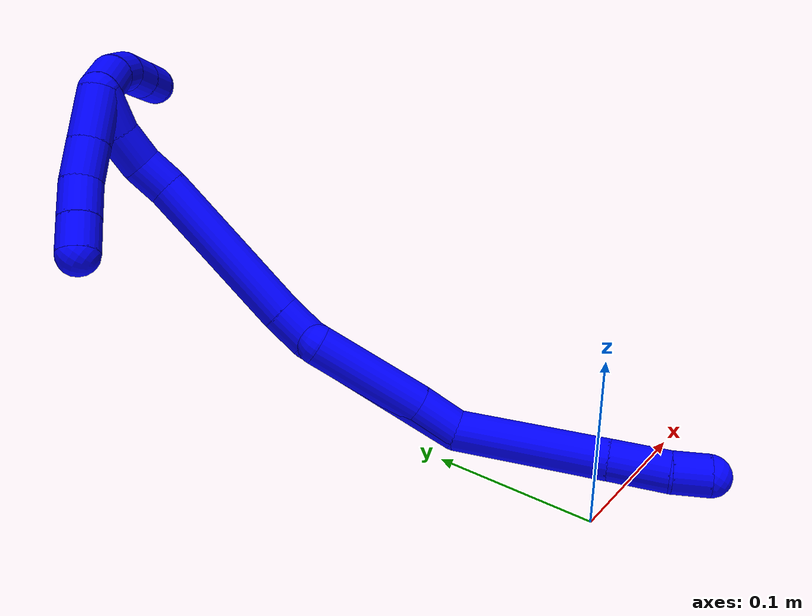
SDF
<sdf version="1.7">
 <world name="default">
  <model name="1">
   <static>0</static>
   <link name="1">
    <collision name="collision-cylinder-e_1_2_8">
     <pose>0.004625 -0.022606 -0.040108 2.62836 0.100126 0.377348</pose>
     <geometry><cylinder><radius>0.0125</radius><length>0.092543</length></cylinder></geometry>
     <surface>
      <friction><ode><mu>1.16</mu><mu2>1.16</mu2><slip1>0</slip1><slip2>0</slip2></ode></friction>
      <contact><ode><kp>1e+06</kp><kd>1</kd><max_vel>0</max_vel><min_depth>0.001</min_depth></ode></contact>
     </surface>
    </collision>
    <visual name="visual-cylinder-e_1_2_8">
     <pose>0.004625 -0.022606 -0.040108 2.62836 0.100126 0.377348</pose>
     <geometry><cylinder><radius>0.0125</radius><length>0.092543</length></cylinder></geometry>
     <material><ambient>0 0 1 1</ambient></material>
    </visual>
    <collision name="collision-cylinder-e_2_8_9">
     <pose>0.010567 -0.054177 -0.095316 2.60575 0.074831 0.271044</pose>
     <geometry><cylinder><radius>0.0125</radius><length>0.03522</length></cylinder></geometry>
     <surface>
      <friction><ode><mu>1.16</mu><mu2>1.16</mu2><slip1>0</slip1><slip2>0</slip2></ode></friction>
      <contact><ode><kp>1e+06</kp><kd>1</kd><max_vel>0</max_vel><min_depth>0.001</min_depth></ode></contact>
     </surface>
    </collision>
    <visual name="visual-cylinder-e_2_8_9">
     <pose>0.010567 -0.054177 -0.095316 2.60575 0.074831 0.271044</pose>
     <geometry><cylinder><radius>0.0125</radius><length>0.03522</length></cylinder></geometry>
     <material><ambient>0 0 1 1</ambient></material>
    </visual>
    <collision name="collision-cylinder-e_3_9_6">
     <pose>0.014564 -0.068342 -0.119871 2.63886 0.243463 0.889172</pose>
     <geometry><cylinder><radius>0.0125</radius><length>0.022236</length></cylinder></geometry>
     <surface>
      <friction><ode><mu>1.16</mu><mu2>1.16</mu2><slip1>0</slip1><slip2>0</slip2></ode></friction>
      <contact><ode><kp>1e+06</kp><kd>1</kd><max_vel>0</max_vel><min_depth>0.001</min_depth></ode></contact>
     </surface>
    </collision>
    <visual name="visual-cylinder-e_3_9_6">
     <pose>0.014564 -0.068342 -0.119871 2.63886 0.243463 0.889172</pose>
     <geometry><cylinder><radius>0.0125</radius><length>0.022236</length></cylinder></geometry>
     <material><ambient>0 0 1 1</ambient></material>
    </visual>
    <collision name="collision-cylinder-e_1_2_10">
     <pose>-0.000681 -0.000761 0.014425 0.052741 -0.047136 -0.001244</pose>
     <geometry><cylinder><radius>0.0125</radius><length>0.028921</length></cylinder></geometry>
     <surface>
      <friction><ode><mu>1.16</mu><mu2>1.16</mu2><slip1>0</slip1><slip2>0</slip2></ode></friction>
      <contact><ode><kp>1e+06</kp><kd>1</kd><max_vel>0</max_vel><min_depth>0.001</min_depth></ode></contact>
     </surface>
    </collision>
    <visual name="visual-cylinder-e_1_2_10">
     <pose>-0.000681 -0.000761 0.014425 0.052741 -0.047136 -0.001244</pose>
     <geometry><cylinder><radius>0.0125</radius><length>0.028921</length></cylinder></geometry>
     <material><ambient>0 0 1 1</ambient></material>
    </visual>
    <collision name="collision-cylinder-e_2_10_5">
     <pose>-0.0057 -0.00378 0.064051 0.064035 -0.122346 -0.003923</pose>
     <geometry><cylinder><radius>0.0125</radius><length>0.071079</length></cylinder></geometry>
     <surface>
      <friction><ode><mu>1.16</mu><mu2>1.16</mu2><slip1>0</slip1><slip2>0</slip2></ode></friction>
      <contact><ode><kp>1e+06</kp><kd>1</kd><max_vel>0</max_vel><min_depth>0.001</min_depth></ode></contact>
     </surface>
    </collision>
    <visual name="visual-cylinder-e_2_10_5">
     <pose>-0.0057 -0.00378 0.064051 0.064035 -0.122346 -0.003923</pose>
     <geometry><cylinder><radius>0.0125</radius><length>0.071079</length></cylinder></geometry>
     <material><ambient>0 0 1 1</ambient></material>
    </visual>
    <collision name="collision-cylinder-e_1_2_11">
     <pose>-0.002799 -0.000149 0.053019 0.002817 -0.052749 -7.4e-05</pose>
     <geometry><cylinder><radius>0.0125</radius><length>0.106186</length></cylinder></geometry>
     <surface>
      <friction><ode><mu>1.16</mu><mu2>1.16</mu2><slip1>0</slip1><slip2>0</slip2></ode></friction>
      <contact><ode><kp>1e+06</kp><kd>1</kd><max_vel>0</max_vel><min_depth>0.001</min_depth></ode></contact>
     </surface>
    </collision>
    <visual name="visual-cylinder-e_1_2_11">
     <pose>-0.002799 -0.000149 0.053019 0.002817 -0.052749 -7.4e-05</pose>
     <geometry><cylinder><radius>0.0125</radius><length>0.106186</length></cylinder></geometry>
     <material><ambient>0 0 1 1</ambient></material>
    </visual>
    <collision name="collision-cylinder-e_2_11_12">
     <pose>-0.004256 -0.001851 0.117496 0.134676 0.115601 0.007805</pose>
     <geometry><cylinder><radius>0.0125</radius><length>0.02328</length></cylinder></geometry>
     <surface>
      <friction><ode><mu>1.16</mu><mu2>1.16</mu2><slip1>0</slip1><slip2>0</slip2></ode></friction>
      <contact><ode><kp>1e+06</kp><kd>1</kd><max_vel>0</max_vel><min_depth>0.001</min_depth></ode></contact>
     </surface>
    </collision>
    <visual name="visual-cylinder-e_2_11_12">
     <pose>-0.004256 -0.001851 0.117496 0.134676 0.115601 0.007805</pose>
     <geometry><cylinder><radius>0.0125</radius><length>0.02328</length></cylinder></geometry>
     <material><ambient>0 0 1 1</ambient></material>
    </visual>
    <collision name="collision-cylinder-e_3_12_13">
     <pose>0.00464 -0.013002 0.177922 0.193551 0.150223 0.014611</pose>
     <geometry><cylinder><radius>0.0125</radius><length>0.100939</length></cylinder></geometry>
     <surface>
      <friction><ode><mu>1.16</mu><mu2>1.16</mu2><slip1>0</slip1><slip2>0</slip2></ode></friction>
      <contact><ode><kp>1e+06</kp><kd>1</kd><max_vel>0</max_vel><min_depth>0.001</min_depth></ode></contact>
     </surface>
    </collision>
    <visual name="visual-cylinder-e_3_12_13">
     <pose>0.00464 -0.013002 0.177922 0.193551 0.150223 0.014611</pose>
     <geometry><cylinder><radius>0.0125</radius><length>0.100939</length></cylinder></geometry>
     <material><ambient>0 0 1 1</ambient></material>
    </visual>
    <collision name="collision-cylinder-e_4_13_14">
     <pose>0.011891 -0.025098 0.237001 0.242231 -0.028981 -0.003528</pose>
     <geometry><cylinder><radius>0.0125</radius><length>0.020835</length></cylinder></geometry>
     <surface>
      <friction><ode><mu>1.16</mu><mu2>1.16</mu2><slip1>0</slip1><slip2>0</slip2></ode></friction>
      <contact><ode><kp>1e+06</kp><kd>1</kd><max_vel>0</max_vel><min_depth>0.001</min_depth></ode></contact>
     </surface>
    </collision>
    <visual name="visual-cylinder-e_4_13_14">
     <pose>0.011891 -0.025098 0.237001 0.242231 -0.028981 -0.003528</pose>
     <geometry><cylinder><radius>0.0125</radius><length>0.020835</length></cylinder></geometry>
     <material><ambient>0 0 1 1</ambient></material>
    </visual>
    <collision name="collision-cylinder-e_5_14_15">
     <pose>0.010929 -0.03372 0.256747 0.56617 -0.057754 -0.016805</pose>
     <geometry><cylinder><radius>0.0125</radius><length>0.022875</length></cylinder></geometry>
     <surface>
      <friction><ode><mu>1.16</mu><mu2>1.16</mu2><slip1>0</slip1><slip2>0</slip2></ode></friction>
      <contact><ode><kp>1e+06</kp><kd>1</kd><max_vel>0</max_vel><min_depth>0.001</min_depth></ode></contact>
     </surface>
    </collision>
    <visual name="visual-cylinder-e_5_14_15">
     <pose>0.010929 -0.03372 0.256747 0.56617 -0.057754 -0.016805</pose>
     <geometry><cylinder><radius>0.0125</radius><length>0.022875</length></cylinder></geometry>
     <material><ambient>0 0 1 1</ambient></material>
    </visual>
    <collision name="collision-cylinder-e_6_15_1">
     <pose>0.011356 -0.048717 0.275744 0.758635 0.08408 0.033533</pose>
     <geometry><cylinder><radius>0.0125</radius><length>0.025885</length></cylinder></geometry>
     <surface>
      <friction><ode><mu>1.16</mu><mu2>1.16</mu2><slip1>0</slip1><slip2>0</slip2></ode></friction>
      <contact><ode><kp>1e+06</kp><kd>1</kd><max_vel>0</max_vel><min_depth>0.001</min_depth></ode></contact>
     </surface>
    </collision>
    <visual name="visual-cylinder-e_6_15_1">
     <pose>0.011356 -0.048717 0.275744 0.758635 0.08408 0.033533</pose>
     <geometry><cylinder><radius>0.0125</radius><length>0.025885</length></cylinder></geometry>
     <material><ambient>0 0 1 1</ambient></material>
    </visual>
    <collision name="collision-cylinder-e_1_1_16">
     <pose>-0.000665 -0.051368 0.277703 -2.44259 -0.93529 1.89131</pose>
     <geometry><cylinder><radius>0.0125</radius><length>0.032576</length></cylinder></geometry>
     <surface>
      <friction><ode><mu>1.16</mu><mu2>1.16</mu2><slip1>0</slip1><slip2>0</slip2></ode></friction>
      <contact><ode><kp>1e+06</kp><kd>1</kd><max_vel>0</max_vel><min_depth>0.001</min_depth></ode></contact>
     </surface>
    </collision>
    <visual name="visual-cylinder-e_1_1_16">
     <pose>-0.000665 -0.051368 0.277703 -2.44259 -0.93529 1.89131</pose>
     <geometry><cylinder><radius>0.0125</radius><length>0.032576</length></cylinder></geometry>
     <material><ambient>0 0 1 1</ambient></material>
    </visual>
    <collision name="collision-cylinder-e_2_16_17">
     <pose>-0.023533 -0.040839 0.264746 -2.482 -0.946485 1.96307</pose>
     <geometry><cylinder><radius>0.0125</radius><length>0.024056</length></cylinder></geometry>
     <surface>
      <friction><ode><mu>1.16</mu><mu2>1.16</mu2><slip1>0</slip1><slip2>0</slip2></ode></friction>
      <contact><ode><kp>1e+06</kp><kd>1</kd><max_vel>0</max_vel><min_depth>0.001</min_depth></ode></contact>
     </surface>
    </collision>
    <visual name="visual-cylinder-e_2_16_17">
     <pose>-0.023533 -0.040839 0.264746 -2.482 -0.946485 1.96307</pose>
     <geometry><cylinder><radius>0.0125</radius><length>0.024056</length></cylinder></geometry>
     <material><ambient>0 0 1 1</ambient></material>
    </visual>
    <collision name="collision-cylinder-e_3_17_18">
     <pose>-0.042249 -0.034114 0.252677 -2.78633 -0.911145 2.43914</pose>
     <geometry><cylinder><radius>0.0125</radius><length>0.02267</length></cylinder></geometry>
     <surface>
      <friction><ode><mu>1.16</mu><mu2>1.16</mu2><slip1>0</slip1><slip2>0</slip2></ode></friction>
      <contact><ode><kp>1e+06</kp><kd>1</kd><max_vel>0</max_vel><min_depth>0.001</min_depth></ode></contact>
     </surface>
    </collision>
    <visual name="visual-cylinder-e_3_17_18">
     <pose>-0.042249 -0.034114 0.252677 -2.78633 -0.911145 2.43914</pose>
     <geometry><cylinder><radius>0.0125</radius><length>0.02267</length></cylinder></geometry>
     <material><ambient>0 0 1 1</ambient></material>
    </visual>
    <collision name="collision-cylinder-e_4_18_4">
     <pose>-0.059274 -0.029273 0.240153 -2.75813 -0.894012 2.37207</pose>
     <geometry><cylinder><radius>0.0125</radius><length>0.020698</length></cylinder></geometry>
     <surface>
      <friction><ode><mu>1.16</mu><mu2>1.16</mu2><slip1>0</slip1><slip2>0</slip2></ode></friction>
      <contact><ode><kp>1e+06</kp><kd>1</kd><max_vel>0</max_vel><min_depth>0.001</min_depth></ode></contact>
     </surface>
    </collision>
    <visual name="visual-cylinder-e_4_18_4">
     <pose>-0.059274 -0.029273 0.240153 -2.75813 -0.894012 2.37207</pose>
     <geometry><cylinder><radius>0.0125</radius><length>0.020698</length></cylinder></geometry>
     <material><ambient>0 0 1 1</ambient></material>
    </visual>
    <collision name="collision-cylinder-e_1_1_19">
     <pose>0.027537 -0.051234 0.289935 -0.920809 1.08428 -0.580586</pose>
     <geometry><cylinder><radius>0.0125</radius><length>0.034152</length></cylinder></geometry>
     <surface>
      <friction><ode><mu>1.16</mu><mu2>1.16</mu2><slip1>0</slip1><slip2>0</slip2></ode></friction>
      <contact><ode><kp>1e+06</kp><kd>1</kd><max_vel>0</max_vel><min_depth>0.001</min_depth></ode></contact>
     </surface>
    </collision>
    <visual name="visual-cylinder-e_1_1_19">
     <pose>0.027537 -0.051234 0.289935 -0.920809 1.08428 -0.580586</pose>
     <geometry><cylinder><radius>0.0125</radius><length>0.034152</length></cylinder></geometry>
     <material><ambient>0 0 1 1</ambient></material>
    </visual>
    <collision name="collision-cylinder-e_2_19_20">
     <pose>0.052166 -0.039588 0.295554 -1.42312 1.05963 -0.935265</pose>
     <geometry><cylinder><radius>0.0125</radius><length>0.021863</length></cylinder></geometry>
     <surface>
      <friction><ode><mu>1.16</mu><mu2>1.16</mu2><slip1>0</slip1><slip2>0</slip2></ode></friction>
      <contact><ode><kp>1e+06</kp><kd>1</kd><max_vel>0</max_vel><min_depth>0.001</min_depth></ode></contact>
     </surface>
    </collision>
    <visual name="visual-cylinder-e_2_19_20">
     <pose>0.052166 -0.039588 0.295554 -1.42312 1.05963 -0.935265</pose>
     <geometry><cylinder><radius>0.0125</radius><length>0.021863</length></cylinder></geometry>
     <material><ambient>0 0 1 1</ambient></material>
    </visual>
    <collision name="collision-cylinder-e_3_20_21">
     <pose>0.070327 -0.027195 0.294249 -1.85717 0.861429 -1.10173</pose>
     <geometry><cylinder><radius>0.0125</radius><length>0.02274</length></cylinder></geometry>
     <surface>
      <friction><ode><mu>1.16</mu><mu2>1.16</mu2><slip1>0</slip1><slip2>0</slip2></ode></friction>
      <contact><ode><kp>1e+06</kp><kd>1</kd><max_vel>0</max_vel><min_depth>0.001</min_depth></ode></contact>
     </surface>
    </collision>
    <visual name="visual-cylinder-e_3_20_21">
     <pose>0.070327 -0.027195 0.294249 -1.85717 0.861429 -1.10173</pose>
     <geometry><cylinder><radius>0.0125</radius><length>0.02274</length></cylinder></geometry>
     <material><ambient>0 0 1 1</ambient></material>
    </visual>
    <collision name="collision-cylinder-e_4_21_3">
     <pose>0.08706 -0.013515 0.290183 -1.86235 0.86808 -1.11439</pose>
     <geometry><cylinder><radius>0.0125</radius><length>0.021245</length></cylinder></geometry>
     <surface>
      <friction><ode><mu>1.16</mu><mu2>1.16</mu2><slip1>0</slip1><slip2>0</slip2></ode></friction>
      <contact><ode><kp>1e+06</kp><kd>1</kd><max_vel>0</max_vel><min_depth>0.001</min_depth></ode></contact>
     </surface>
    </collision>
    <visual name="visual-cylinder-e_4_21_3">
     <pose>0.08706 -0.013515 0.290183 -1.86235 0.86808 -1.11439</pose>
     <geometry><cylinder><radius>0.0125</radius><length>0.021245</length></cylinder></geometry>
     <material><ambient>0 0 1 1</ambient></material>
    </visual>
    <collision name="collision-sphere-3">
     <pose>0.095166 -0.006939 0.28821 0 -0 0</pose>
     <geometry><sphere><radius>0.0125</radius></sphere></geometry>
     <surface>
      <friction><ode><mu>1.16</mu><mu2>1.16</mu2><slip1>0</slip1><slip2>0</slip2></ode></friction>
      <contact><ode><kp>1e+06</kp><kd>1</kd><max_vel>0</max_vel><min_depth>0.001</min_depth></ode></contact>
     </surface>
    </collision>
    <visual name="visual-sphere-3">
     <pose>0.095166 -0.006939 0.28821 0 -0 0</pose>
     <geometry><sphere><radius>0.0125</radius></sphere></geometry>
     <material><ambient>0 0 1 1</ambient></material>
    </visual>
    <collision name="collision-sphere-21">
     <pose>0.078954 -0.02009 0.292157 0 -0 0</pose>
     <geometry><sphere><radius>0.0125</radius></sphere></geometry>
     <surface>
      <friction><ode><mu>1.16</mu><mu2>1.16</mu2><slip1>0</slip1><slip2>0</slip2></ode></friction>
      <contact><ode><kp>1e+06</kp><kd>1</kd><max_vel>0</max_vel><min_depth>0.001</min_depth></ode></contact>
     </surface>
    </collision>
    <visual name="visual-sphere-21">
     <pose>0.078954 -0.02009 0.292157 0 -0 0</pose>
     <geometry><sphere><radius>0.0125</radius></sphere></geometry>
     <material><ambient>0 0 1 1</ambient></material>
    </visual>
    <collision name="collision-sphere-20">
     <pose>0.0617 -0.034299 0.296341 0 -0 0</pose>
     <geometry><sphere><radius>0.0125</radius></sphere></geometry>
     <surface>
      <friction><ode><mu>1.16</mu><mu2>1.16</mu2><slip1>0</slip1><slip2>0</slip2></ode></friction>
      <contact><ode><kp>1e+06</kp><kd>1</kd><max_vel>0</max_vel><min_depth>0.001</min_depth></ode></contact>
     </surface>
    </collision>
    <visual name="visual-sphere-20">
     <pose>0.0617 -0.034299 0.296341 0 -0 0</pose>
     <geometry><sphere><radius>0.0125</radius></sphere></geometry>
     <material><ambient>0 0 1 1</ambient></material>
    </visual>
    <collision name="collision-sphere-19">
     <pose>0.042632 -0.044878 0.294767 0 -0 0</pose>
     <geometry><sphere><radius>0.0125</radius></sphere></geometry>
     <surface>
      <friction><ode><mu>1.16</mu><mu2>1.16</mu2><slip1>0</slip1><slip2>0</slip2></ode></friction>
      <contact><ode><kp>1e+06</kp><kd>1</kd><max_vel>0</max_vel><min_depth>0.001</min_depth></ode></contact>
     </surface>
    </collision>
    <visual name="visual-sphere-19">
     <pose>0.042632 -0.044878 0.294767 0 -0 0</pose>
     <geometry><sphere><radius>0.0125</radius></sphere></geometry>
     <material><ambient>0 0 1 1</ambient></material>
    </visual>
    <collision name="collision-sphere-5">
     <pose>-0.010037 -0.006037 0.099252 0 -0 0</pose>
     <geometry><sphere><radius>0.0125</radius></sphere></geometry>
     <surface>
      <friction><ode><mu>1.16</mu><mu2>1.16</mu2><slip1>0</slip1><slip2>0</slip2></ode></friction>
      <contact><ode><kp>1e+06</kp><kd>1</kd><max_vel>0</max_vel><min_depth>0.001</min_depth></ode></contact>
     </surface>
    </collision>
    <visual name="visual-sphere-5">
     <pose>-0.010037 -0.006037 0.099252 0 -0 0</pose>
     <geometry><sphere><radius>0.0125</radius></sphere></geometry>
     <material><ambient>0 0 1 1</ambient></material>
    </visual>
    <collision name="collision-sphere-10">
     <pose>-0.001363 -0.001523 0.028849 0 -0 0</pose>
     <geometry><sphere><radius>0.0125</radius></sphere></geometry>
     <surface>
      <friction><ode><mu>1.16</mu><mu2>1.16</mu2><slip1>0</slip1><slip2>0</slip2></ode></friction>
      <contact><ode><kp>1e+06</kp><kd>1</kd><max_vel>0</max_vel><min_depth>0.001</min_depth></ode></contact>
     </surface>
    </collision>
    <visual name="visual-sphere-10">
     <pose>-0.001363 -0.001523 0.028849 0 -0 0</pose>
     <geometry><sphere><radius>0.0125</radius></sphere></geometry>
     <material><ambient>0 0 1 1</ambient></material>
    </visual>
    <collision name="collision-sphere-6">
     <pose>0.017244 -0.073541 -0.129326 0 -0 0</pose>
     <geometry><sphere><radius>0.0125</radius></sphere></geometry>
     <surface>
      <friction><ode><mu>1.16</mu><mu2>1.16</mu2><slip1>0</slip1><slip2>0</slip2></ode></friction>
      <contact><ode><kp>1e+06</kp><kd>1</kd><max_vel>0</max_vel><min_depth>0.001</min_depth></ode></contact>
     </surface>
    </collision>
    <visual name="visual-sphere-6">
     <pose>0.017244 -0.073541 -0.129326 0 -0 0</pose>
     <geometry><sphere><radius>0.0125</radius></sphere></geometry>
     <material><ambient>0 0 1 1</ambient></material>
    </visual>
    <collision name="collision-sphere-9">
     <pose>0.011884 -0.063143 -0.110416 0 -0 0</pose>
     <geometry><sphere><radius>0.0125</radius></sphere></geometry>
     <surface>
      <friction><ode><mu>1.16</mu><mu2>1.16</mu2><slip1>0</slip1><slip2>0</slip2></ode></friction>
      <contact><ode><kp>1e+06</kp><kd>1</kd><max_vel>0</max_vel><min_depth>0.001</min_depth></ode></contact>
     </surface>
    </collision>
    <visual name="visual-sphere-9">
     <pose>0.011884 -0.063143 -0.110416 0 -0 0</pose>
     <geometry><sphere><radius>0.0125</radius></sphere></geometry>
     <material><ambient>0 0 1 1</ambient></material>
    </visual>
    <collision name="collision-sphere-2">
     <geometry><sphere><radius>0.0125</radius></sphere></geometry>
     <surface>
      <friction><ode><mu>1.16</mu><mu2>1.16</mu2><slip1>0</slip1><slip2>0</slip2></ode></friction>
      <contact><ode><kp>1e+06</kp><kd>1</kd><max_vel>0</max_vel><min_depth>0.001</min_depth></ode></contact>
     </surface>
    </collision>
    <visual name="visual-sphere-2">
     <geometry><sphere><radius>0.0125</radius></sphere></geometry>
     <material><ambient>0 0 1 1</ambient></material>
    </visual>
    <collision name="collision-sphere-8">
     <pose>0.00925 -0.045211 -0.080216 0 -0 0</pose>
     <geometry><sphere><radius>0.0125</radius></sphere></geometry>
     <surface>
      <friction><ode><mu>1.16</mu><mu2>1.16</mu2><slip1>0</slip1><slip2>0</slip2></ode></friction>
      <contact><ode><kp>1e+06</kp><kd>1</kd><max_vel>0</max_vel><min_depth>0.001</min_depth></ode></contact>
     </surface>
    </collision>
    <visual name="visual-sphere-8">
     <pose>0.00925 -0.045211 -0.080216 0 -0 0</pose>
     <geometry><sphere><radius>0.0125</radius></sphere></geometry>
     <material><ambient>0 0 1 1</ambient></material>
    </visual>
    <collision name="collision-sphere-11">
     <pose>-0.005599 -0.000299 0.106038 0 -0 0</pose>
     <geometry><sphere><radius>0.0125</radius></sphere></geometry>
     <surface>
      <friction><ode><mu>1.16</mu><mu2>1.16</mu2><slip1>0</slip1><slip2>0</slip2></ode></friction>
      <contact><ode><kp>1e+06</kp><kd>1</kd><max_vel>0</max_vel><min_depth>0.001</min_depth></ode></contact>
     </surface>
    </collision>
    <visual name="visual-sphere-11">
     <pose>-0.005599 -0.000299 0.106038 0 -0 0</pose>
     <geometry><sphere><radius>0.0125</radius></sphere></geometry>
     <material><ambient>0 0 1 1</ambient></material>
    </visual>
    <collision name="collision-sphere-12">
     <pose>-0.002913 -0.003404 0.128953 0 -0 0</pose>
     <geometry><sphere><radius>0.0125</radius></sphere></geometry>
     <surface>
      <friction><ode><mu>1.16</mu><mu2>1.16</mu2><slip1>0</slip1><slip2>0</slip2></ode></friction>
      <contact><ode><kp>1e+06</kp><kd>1</kd><max_vel>0</max_vel><min_depth>0.001</min_depth></ode></contact>
     </surface>
    </collision>
    <visual name="visual-sphere-12">
     <pose>-0.002913 -0.003404 0.128953 0 -0 0</pose>
     <geometry><sphere><radius>0.0125</radius></sphere></geometry>
     <material><ambient>0 0 1 1</ambient></material>
    </visual>
    <collision name="collision-sphere-13">
     <pose>0.012193 -0.0226 0.226892 0 -0 0</pose>
     <geometry><sphere><radius>0.0125</radius></sphere></geometry>
     <surface>
      <friction><ode><mu>1.16</mu><mu2>1.16</mu2><slip1>0</slip1><slip2>0</slip2></ode></friction>
      <contact><ode><kp>1e+06</kp><kd>1</kd><max_vel>0</max_vel><min_depth>0.001</min_depth></ode></contact>
     </surface>
    </collision>
    <visual name="visual-sphere-13">
     <pose>0.012193 -0.0226 0.226892 0 -0 0</pose>
     <geometry><sphere><radius>0.0125</radius></sphere></geometry>
     <material><ambient>0 0 1 1</ambient></material>
    </visual>
    <collision name="collision-sphere-14">
     <pose>0.011589 -0.027596 0.24711 0 -0 0</pose>
     <geometry><sphere><radius>0.0125</radius></sphere></geometry>
     <surface>
      <friction><ode><mu>1.16</mu><mu2>1.16</mu2><slip1>0</slip1><slip2>0</slip2></ode></friction>
      <contact><ode><kp>1e+06</kp><kd>1</kd><max_vel>0</max_vel><min_depth>0.001</min_depth></ode></contact>
     </surface>
    </collision>
    <visual name="visual-sphere-14">
     <pose>0.011589 -0.027596 0.24711 0 -0 0</pose>
     <geometry><sphere><radius>0.0125</radius></sphere></geometry>
     <material><ambient>0 0 1 1</ambient></material>
    </visual>
    <collision name="collision-sphere-15">
     <pose>0.010269 -0.039845 0.266384 0 -0 0</pose>
     <geometry><sphere><radius>0.0125</radius></sphere></geometry>
     <surface>
      <friction><ode><mu>1.16</mu><mu2>1.16</mu2><slip1>0</slip1><slip2>0</slip2></ode></friction>
      <contact><ode><kp>1e+06</kp><kd>1</kd><max_vel>0</max_vel><min_depth>0.001</min_depth></ode></contact>
     </surface>
    </collision>
    <visual name="visual-sphere-15">
     <pose>0.010269 -0.039845 0.266384 0 -0 0</pose>
     <geometry><sphere><radius>0.0125</radius></sphere></geometry>
     <material><ambient>0 0 1 1</ambient></material>
    </visual>
    <collision name="collision-sphere-1">
     <pose>0.012443 -0.057589 0.285104 0 -0 0</pose>
     <geometry><sphere><radius>0.0125</radius></sphere></geometry>
     <surface>
      <friction><ode><mu>1.16</mu><mu2>1.16</mu2><slip1>0</slip1><slip2>0</slip2></ode></friction>
      <contact><ode><kp>1e+06</kp><kd>1</kd><max_vel>0</max_vel><min_depth>0.001</min_depth></ode></contact>
     </surface>
    </collision>
    <visual name="visual-sphere-1">
     <pose>0.012443 -0.057589 0.285104 0 -0 0</pose>
     <geometry><sphere><radius>0.0125</radius></sphere></geometry>
     <material><ambient>0 0 1 1</ambient></material>
    </visual>
    <collision name="collision-sphere-18">
     <pose>-0.051206 -0.031698 0.246164 0 -0 0</pose>
     <geometry><sphere><radius>0.0125</radius></sphere></geometry>
     <surface>
      <friction><ode><mu>1.16</mu><mu2>1.16</mu2><slip1>0</slip1><slip2>0</slip2></ode></friction>
      <contact><ode><kp>1e+06</kp><kd>1</kd><max_vel>0</max_vel><min_depth>0.001</min_depth></ode></contact>
     </surface>
    </collision>
    <visual name="visual-sphere-18">
     <pose>-0.051206 -0.031698 0.246164 0 -0 0</pose>
     <geometry><sphere><radius>0.0125</radius></sphere></geometry>
     <material><ambient>0 0 1 1</ambient></material>
    </visual>
    <collision name="collision-sphere-16">
     <pose>-0.013773 -0.045147 0.270302 0 -0 0</pose>
     <geometry><sphere><radius>0.0125</radius></sphere></geometry>
     <surface>
      <friction><ode><mu>1.16</mu><mu2>1.16</mu2><slip1>0</slip1><slip2>0</slip2></ode></friction>
      <contact><ode><kp>1e+06</kp><kd>1</kd><max_vel>0</max_vel><min_depth>0.001</min_depth></ode></contact>
     </surface>
    </collision>
    <visual name="visual-sphere-16">
     <pose>-0.013773 -0.045147 0.270302 0 -0 0</pose>
     <geometry><sphere><radius>0.0125</radius></sphere></geometry>
     <material><ambient>0 0 1 1</ambient></material>
    </visual>
    <collision name="collision-sphere-17">
     <pose>-0.033292 -0.03653 0.25919 0 -0 0</pose>
     <geometry><sphere><radius>0.0125</radius></sphere></geometry>
     <surface>
      <friction><ode><mu>1.16</mu><mu2>1.16</mu2><slip1>0</slip1><slip2>0</slip2></ode></friction>
      <contact><ode><kp>1e+06</kp><kd>1</kd><max_vel>0</max_vel><min_depth>0.001</min_depth></ode></contact>
     </surface>
    </collision>
    <visual name="visual-sphere-17">
     <pose>-0.033292 -0.03653 0.25919 0 -0 0</pose>
     <geometry><sphere><radius>0.0125</radius></sphere></geometry>
     <material><ambient>0 0 1 1</ambient></material>
    </visual>
    <collision name="collision-sphere-4">
     <pose>-0.067342 -0.026848 0.234143 0 -0 0</pose>
     <geometry><sphere><radius>0.0125</radius></sphere></geometry>
     <surface>
      <friction><ode><mu>1.16</mu><mu2>1.16</mu2><slip1>0</slip1><slip2>0</slip2></ode></friction>
      <contact><ode><kp>1e+06</kp><kd>1</kd><max_vel>0</max_vel><min_depth>0.001</min_depth></ode></contact>
     </surface>
    </collision>
    <visual name="visual-sphere-4">
     <pose>-0.067342 -0.026848 0.234143 0 -0 0</pose>
     <geometry><sphere><radius>0.0125</radius></sphere></geometry>
     <material><ambient>0 0 1 1</ambient></material>
    </visual>
    <inertial>
     <pose>0.00576 -0.023057 0.126457 0 -0 0</pose>
     <mass>0.75</mass>
     <inertia>
      <ixx>0.000339</ixx>
      <ixy>0</ixy>
      <ixz>0</ixz>
      <iyy>0.000216</iyy>
      <iyz>0</iyz>
      <izz>5.6e-05</izz>
     </inertia>
    </inertial>
   </link>
   <pose>0.013368 0.099004 0.01476 -0.995426 -0.277791 0.234021</pose>
  </model>
 </world>
</sdf>
